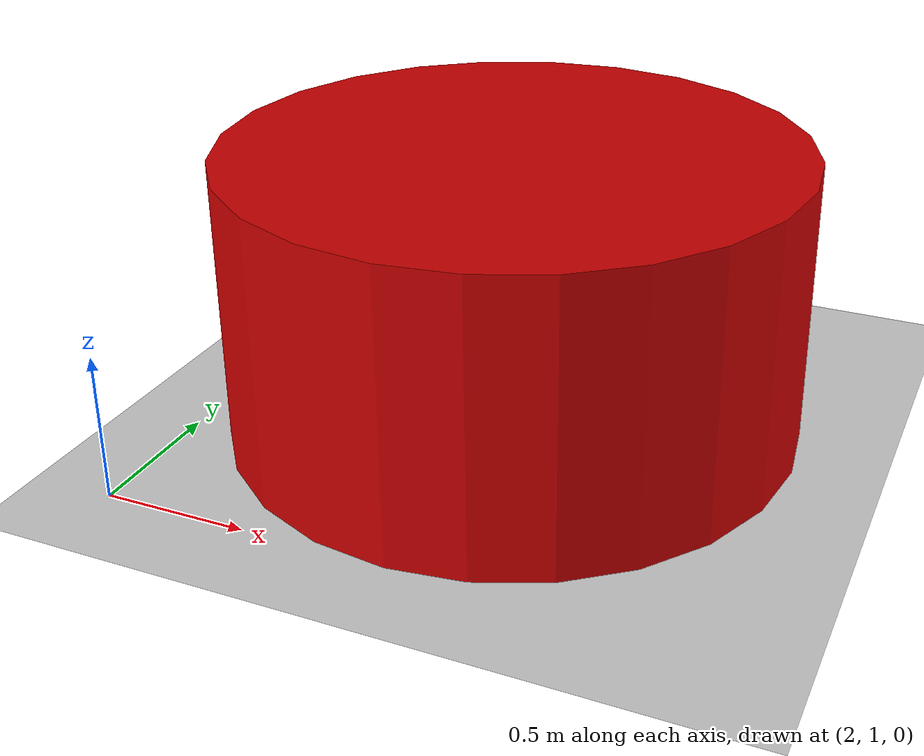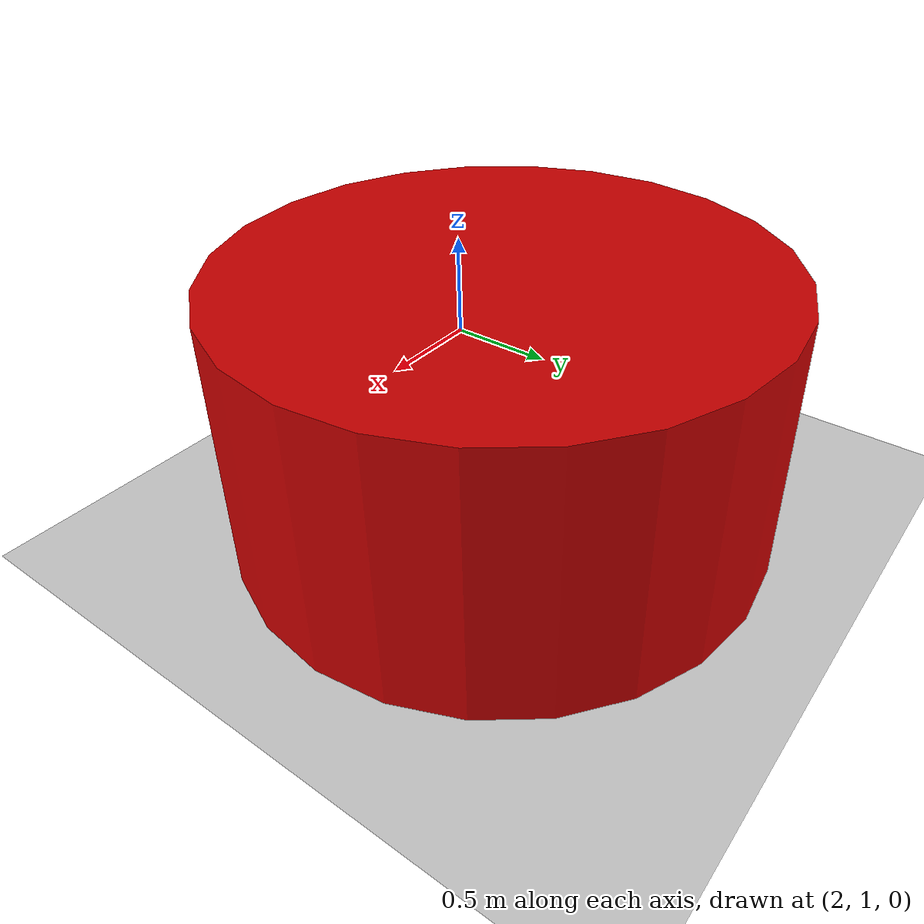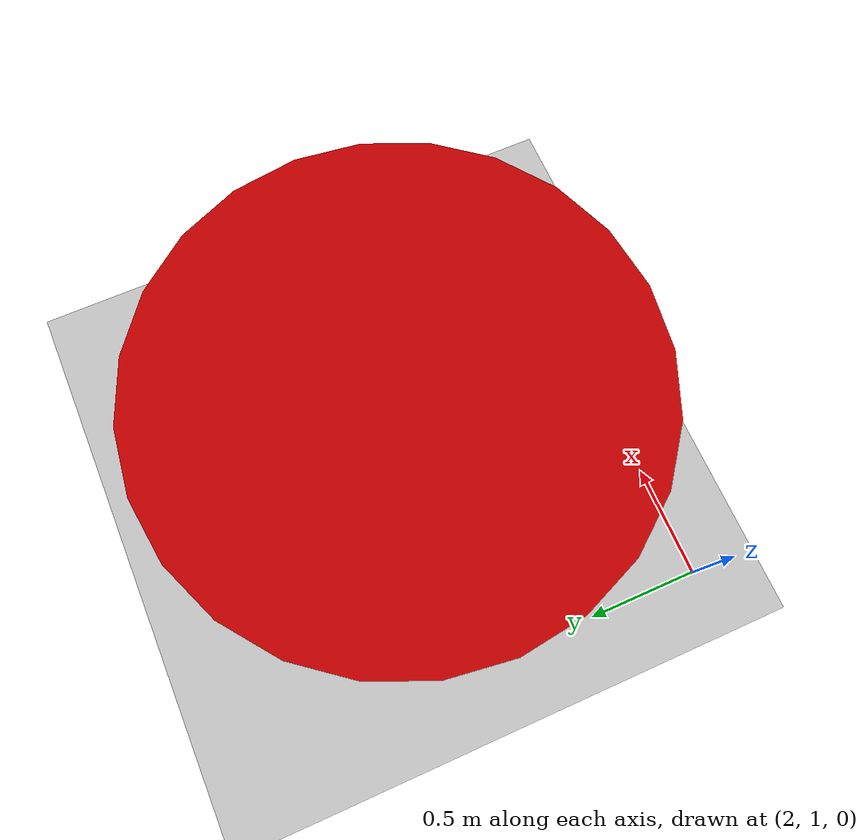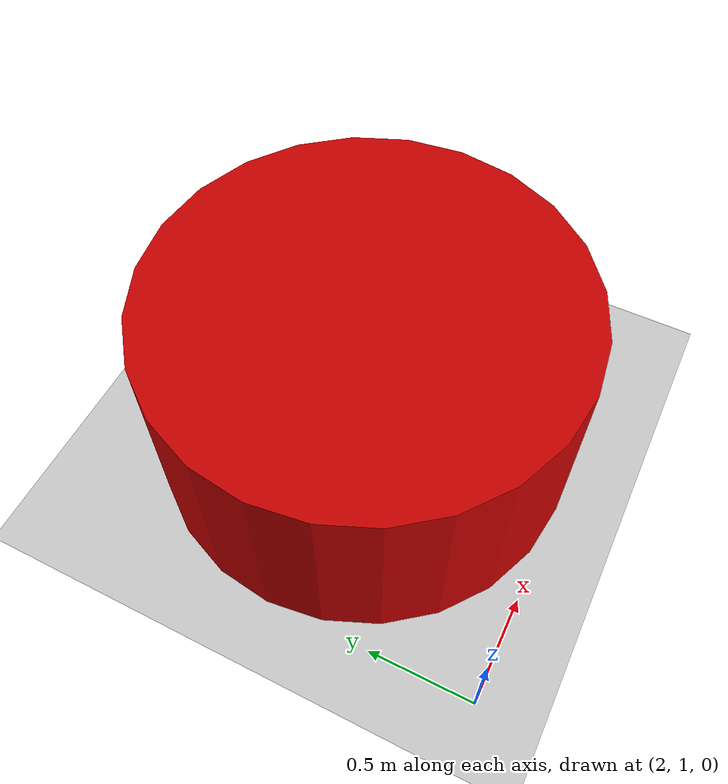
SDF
<?xml version="1.0" ?>
<sdf version="1.6">
  <world name="simple_swarm">
    <!-- A global light source -->
    <include>
      <uri>model://sun</uri>
    </include>

    <!-- A ground plane -->
    <include>
      <uri>model://ground_plane</uri>
    </include>

    <!-- Physics engine -->
    <physics type="ode">
      <max_step_size>0.001</max_step_size>
      <real_time_factor>1</real_time_factor>
      <real_time_update_rate>1000</real_time_update_rate>
      <gravity>0 0 -9.81</gravity>
    </physics>

    <!-- GUI -->
    <gui fullscreen='0'>
      <camera name='user_camera'>
        <pose>10 -10 5 0 0.785 0.785</pose>
        <view_controller>orbit</view_controller>
        <projection_type>perspective</projection_type>
      </camera>
    </gui>

    <!-- Simple static obstacle -->
    <model name="obstacle_1">
      <static>true</static>
      <pose>3 2 0.5 0 0 0</pose>
      <link name="link">
        <collision name="collision">
          <geometry>
            <cylinder>
              <radius>1.0</radius>
              <length>1.0</length>
            </cylinder>
          </geometry>
        </collision>
        <visual name="visual">
          <geometry>
            <cylinder>
              <radius>1.0</radius>
              <length>1.0</length>
            </cylinder>
          </geometry>
          <material>
            <ambient>0.8 0 0 1</ambient>
            <diffuse>0.8 0 0 1</diffuse>
          </material>
        </visual>
      </link>
    </model>

  </world>
</sdf>
